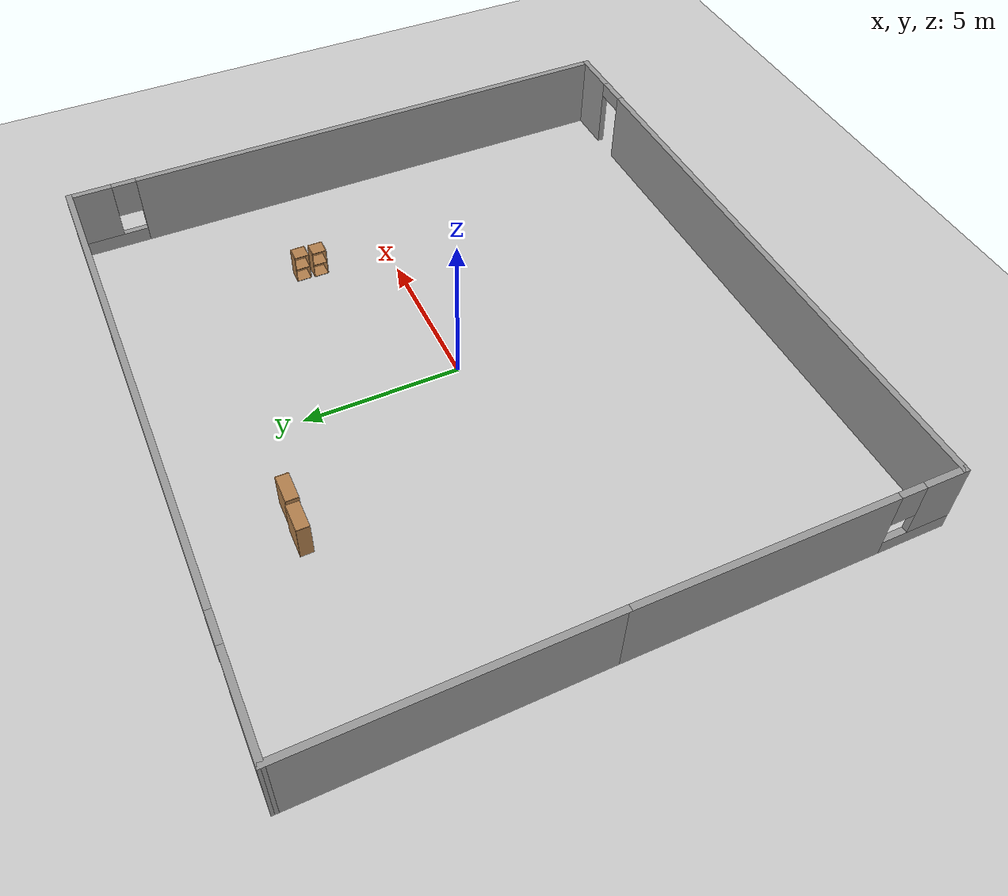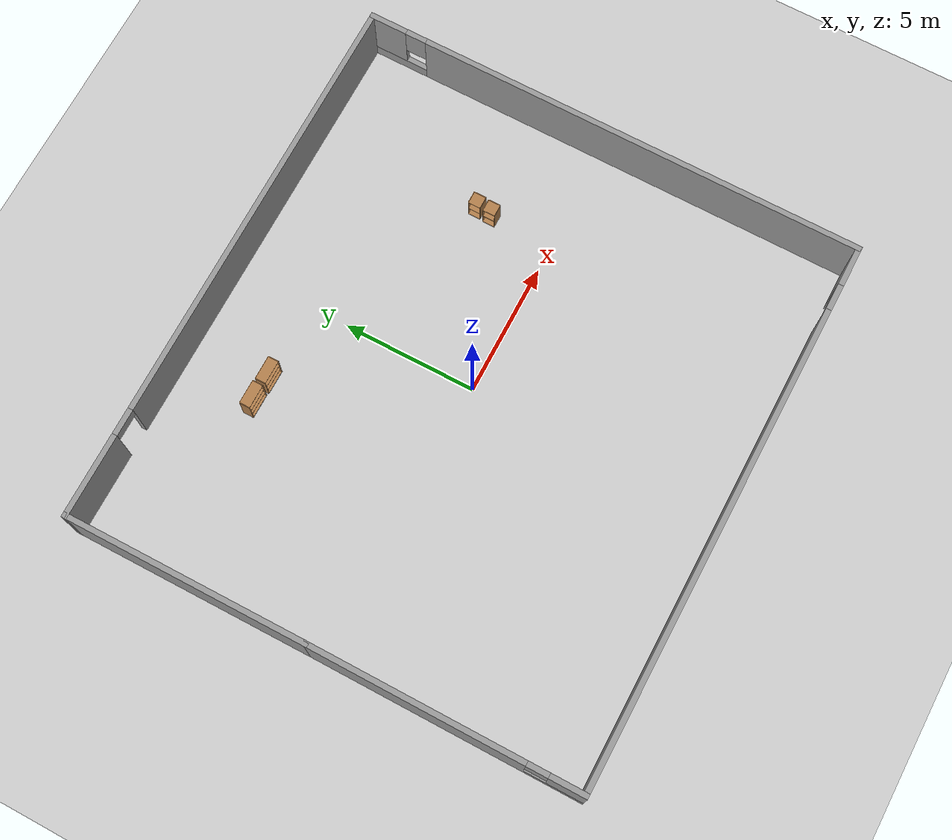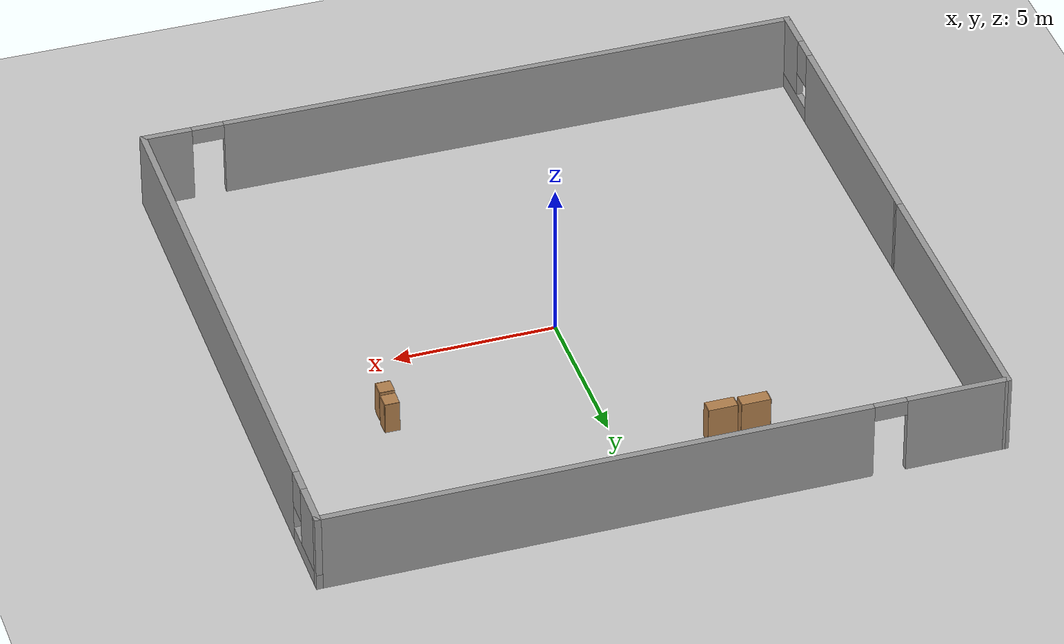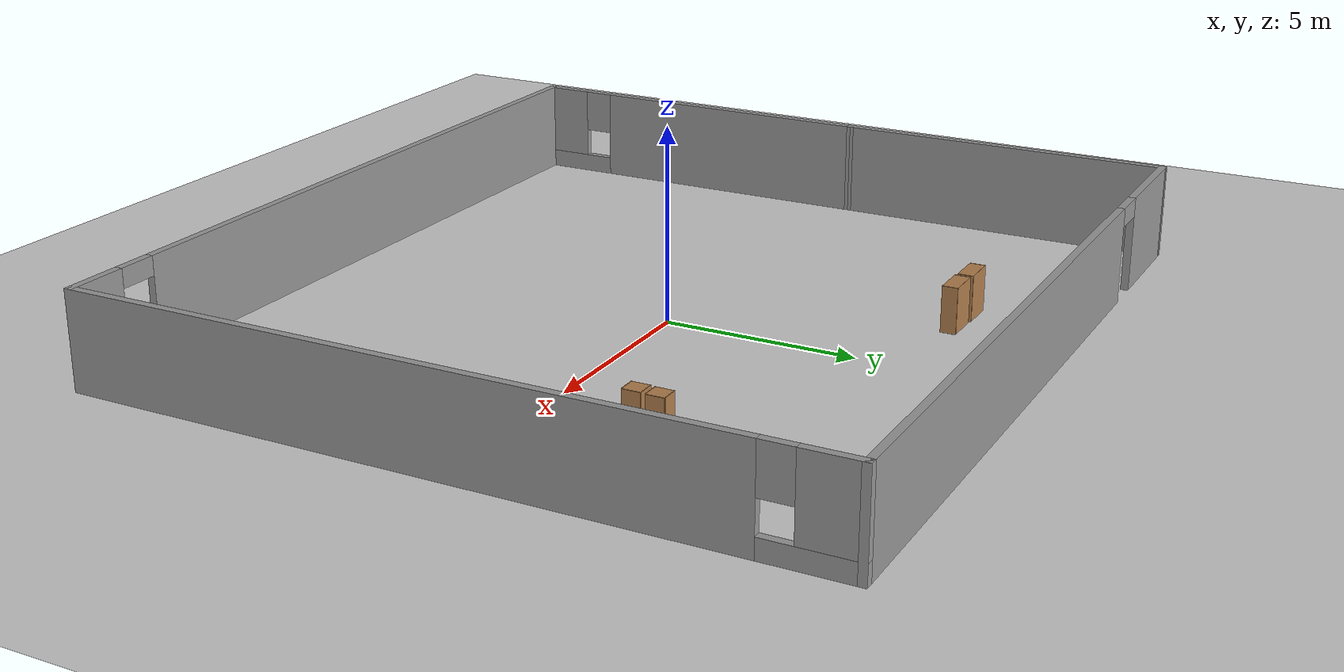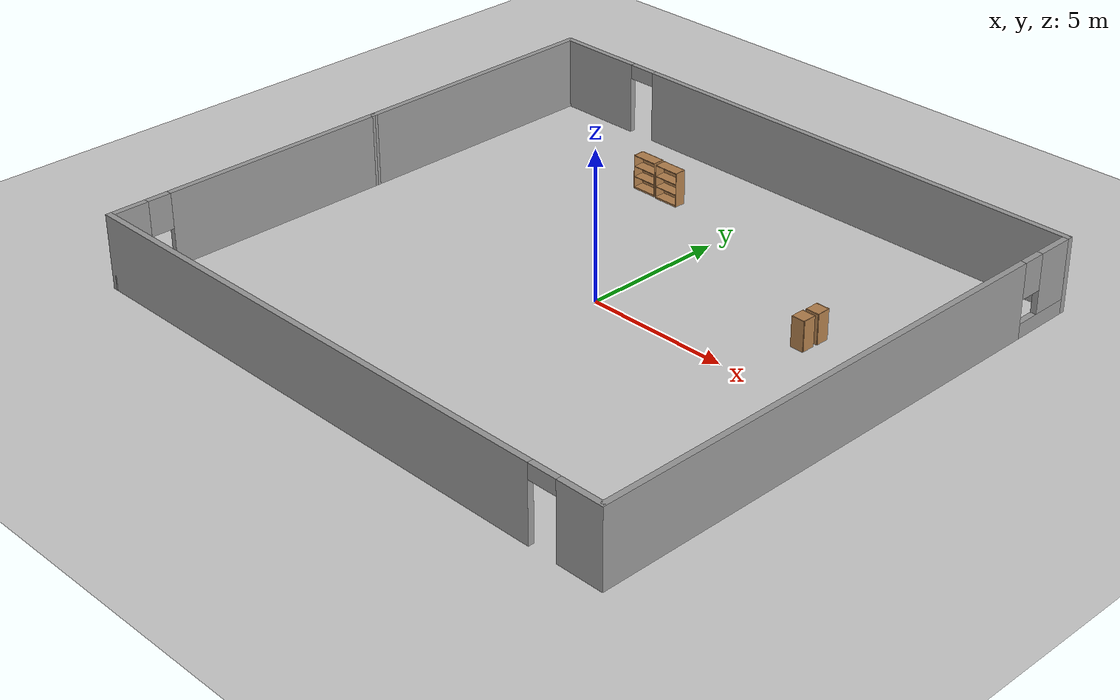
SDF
<sdf version="1.4">
 <world name="default">
  <light name="sun" type="directional">
   <pose>0 0 10 0 -0 0</pose>
   <diffuse>0.8 0.8 0.8 1</diffuse>
   <specular>0.2 0.2 0.2 1</specular>
   <attenuation>
    <range>1000</range>
    <constant>0.9</constant>
    <linear>0.01</linear>
    <quadratic>0.001</quadratic>
   </attenuation>
   <direction>-0.5 0.1 -0.9</direction>
  </light>
  <model name="ground_plane">
   <static>1</static>
   <link name="link">
    <collision name="collision">
     <geometry><plane><normal>0 0 1</normal><size>100 100</size></plane></geometry>
     <surface><friction><ode><mu>100</mu><mu2>50</mu2></ode></friction></surface>
    </collision>
    <visual name="visual">
     <cast_shadows>0</cast_shadows>
     <geometry><plane><normal>0 0 1</normal><size>100 100</size></plane></geometry>
     <material>
      <script><uri>file://media/materials/scripts/gazebo.material</uri><name>Gazebo/Grey</name></script>
     </material>
    </visual>
    <velocity_decay><linear>0</linear><angular>0</angular></velocity_decay>
   </link>
  </model>
  <physics type="ode">
   <max_step_size>0.001</max_step_size>
   <real_time_factor>1</real_time_factor>
   <real_time_update_rate>1000</real_time_update_rate>
   <gravity>0 0 -9.8</gravity>
  </physics>
  <scene><ambient>0.4 0.4 0.4 1</ambient><background>0.7 0.7 0.7 1</background><shadows>1</shadows></scene>
  <spherical_coordinates>
   <surface_model>EARTH_WGS84</surface_model>
   <latitude_deg>0</latitude_deg>
   <longitude_deg>0</longitude_deg>
   <elevation>0</elevation>
   <heading_deg>0</heading_deg>
  </spherical_coordinates>
  <model name="BuildingDefaultNameXX1">
   <link name="Wall_10">
    <collision name="Wall_10_Collision">
     <geometry><box><size>9.16626 0.2 2.5</size></box></geometry>
     <pose>0 0 1.25 0 -0 0</pose>
    </collision>
    <visual name="Wall_10_Visual">
     <pose>0 0 1.25 0 -0 0</pose>
     <geometry><box><size>9.16626 0.2 2.5</size></box></geometry>
     <material>
      <script><uri>file://media/materials/scripts/gazebo.material</uri><name>Gazebo/Grey</name></script>
     </material>
    </visual>
    <velocity_decay><linear>0</linear><angular>0</angular></velocity_decay>
    <pose>-10.6432 4.8497 0 0 0 -1.56526</pose>
   </link>
   <link name="Wall_6">
    <pose>-10.6184 -4.64118 0 0 0 -1.5708</pose>
    <visual name="Wall_6_Visual_0">
     <pose>-1.08743 0 1.25 0 -0 0</pose>
     <geometry><box><size>8.04077 0.2 2.5</size></box></geometry>
     <material>
      <script><uri>file://media/materials/scripts/gazebo.material</uri><name>Gazebo/Grey</name></script>
     </material>
    </visual>
    <collision name="Wall_6_Collision_0">
     <geometry><box><size>8.04077 0.2 2.5</size></box></geometry>
     <pose>-1.08743 0 1.25 0 -0 0</pose>
    </collision>
    <visual name="Wall_6_Visual_1">
     <pose>4.02039 0 0.25 0 -0 0</pose>
     <geometry><box><size>2.17486 0.2 0.5</size></box></geometry>
     <material>
      <script><uri>file://media/materials/scripts/gazebo.material</uri><name>Gazebo/Grey</name></script>
     </material>
    </visual>
    <collision name="Wall_6_Collision_1">
     <geometry><box><size>2.17486 0.2 0.5</size></box></geometry>
     <pose>4.02039 0 0.25 0 -0 0</pose>
    </collision>
    <visual name="Wall_6_Visual_2">
     <pose>4.42038 0 1.5 0 -0 0</pose>
     <geometry><box><size>1.37486 0.2 2</size></box></geometry>
     <material>
      <script><uri>file://media/materials/scripts/gazebo.material</uri><name>Gazebo/Grey</name></script>
     </material>
    </visual>
    <collision name="Wall_6_Collision_2">
     <geometry><box><size>1.37486 0.2 2</size></box></geometry>
     <pose>4.42038 0 1.5 0 -0 0</pose>
    </collision>
    <visual name="Wall_6_Visual_3">
     <pose>3.33296 0 1.9 0 -0 0</pose>
     <geometry><box><size>0.8 0.2 1.2</size></box></geometry>
     <material>
      <script><uri>file://media/materials/scripts/gazebo.material</uri><name>Gazebo/Grey</name></script>
     </material>
    </visual>
    <collision name="Wall_6_Collision_3">
     <geometry><box><size>0.8 0.2 1.2</size></box></geometry>
     <pose>3.33296 0 1.9 0 -0 0</pose>
    </collision>
    <velocity_decay><linear>0</linear><angular>0</angular></velocity_decay>
   </link>
   <link name="Wall_7">
    <pose>-0.314916 -9.649 0 0 -0 0</pose>
    <visual name="Wall_7_Visual_0">
     <pose>-1.30026 0 1.25 0 -0 0</pose>
     <geometry><box><size>18.2064 0.2 2.5</size></box></geometry>
     <material>
      <script><uri>file://media/materials/scripts/gazebo.material</uri><name>Gazebo/Grey</name></script>
     </material>
    </visual>
    <collision name="Wall_7_Collision_0">
     <geometry><box><size>18.2064 0.2 2.5</size></box></geometry>
     <pose>-1.30026 0 1.25 0 -0 0</pose>
    </collision>
    <visual name="Wall_7_Visual_1">
     <pose>9.60322 0 1.25 0 -0 0</pose>
     <geometry><box><size>1.60053 0.2 2.5</size></box></geometry>
     <material>
      <script><uri>file://media/materials/scripts/gazebo.material</uri><name>Gazebo/Grey</name></script>
     </material>
    </visual>
    <collision name="Wall_7_Collision_1">
     <geometry><box><size>1.60053 0.2 2.5</size></box></geometry>
     <pose>9.60322 0 1.25 0 -0 0</pose>
    </collision>
    <visual name="Wall_7_Visual_2">
     <pose>8.30296 0 2.25 0 -0 0</pose>
     <geometry><box><size>1 0.2 0.5</size></box></geometry>
     <material>
      <script><uri>file://media/materials/scripts/gazebo.material</uri><name>Gazebo/Grey</name></script>
     </material>
    </visual>
    <collision name="Wall_7_Collision_2">
     <geometry><box><size>1 0.2 0.5</size></box></geometry>
     <pose>8.30296 0 2.25 0 -0 0</pose>
    </collision>
    <velocity_decay><linear>0</linear><angular>0</angular></velocity_decay>
   </link>
   <link name="Wall_8">
    <pose>9.98857 -0.15812 0 0 -0 1.5708</pose>
    <visual name="Wall_8_Visual_0">
     <pose>-1.13395 0 1.25 0 -0 0</pose>
     <geometry><box><size>16.9138 0.2 2.5</size></box></geometry>
     <material>
      <script><uri>file://media/materials/scripts/gazebo.material</uri><name>Gazebo/Grey</name></script>
     </material>
    </visual>
    <collision name="Wall_8_Collision_0">
     <geometry><box><size>16.9138 0.2 2.5</size></box></geometry>
     <pose>-1.13395 0 1.25 0 -0 0</pose>
    </collision>
    <visual name="Wall_8_Visual_1">
     <pose>8.45692 0 0.25 0 -0 0</pose>
     <geometry><box><size>2.26791 0.2 0.5</size></box></geometry>
     <material>
      <script><uri>file://media/materials/scripts/gazebo.material</uri><name>Gazebo/Grey</name></script>
     </material>
    </visual>
    <collision name="Wall_8_Collision_1">
     <geometry><box><size>2.26791 0.2 0.5</size></box></geometry>
     <pose>8.45692 0 0.25 0 -0 0</pose>
    </collision>
    <visual name="Wall_8_Visual_2">
     <pose>8.85692 0 1.5 0 -0 0</pose>
     <geometry><box><size>1.46791 0.2 2</size></box></geometry>
     <material>
      <script><uri>file://media/materials/scripts/gazebo.material</uri><name>Gazebo/Grey</name></script>
     </material>
    </visual>
    <collision name="Wall_8_Collision_2">
     <geometry><box><size>1.46791 0.2 2</size></box></geometry>
     <pose>8.85692 0 1.5 0 -0 0</pose>
    </collision>
    <visual name="Wall_8_Visual_3">
     <pose>7.72297 0 1.9 0 -0 0</pose>
     <geometry><box><size>0.8 0.2 1.2</size></box></geometry>
     <material>
      <script><uri>file://media/materials/scripts/gazebo.material</uri><name>Gazebo/Grey</name></script>
     </material>
    </visual>
    <collision name="Wall_8_Collision_3">
     <geometry><box><size>0.8 0.2 1.2</size></box></geometry>
     <pose>7.72297 0 1.9 0 -0 0</pose>
    </collision>
    <velocity_decay><linear>0</linear><angular>0</angular></velocity_decay>
   </link>
   <link name="Wall_9">
    <pose>-0.339737 9.33276 0 0 -0 3.14159</pose>
    <visual name="Wall_9_Visual_0">
     <pose>-2.09117 0 1.25 0 -0 0</pose>
     <geometry><box><size>16.6743 0.2 2.5</size></box></geometry>
     <material>
      <script><uri>file://media/materials/scripts/gazebo.material</uri><name>Gazebo/Grey</name></script>
     </material>
    </visual>
    <collision name="Wall_9_Collision_0">
     <geometry><box><size>16.6743 0.2 2.5</size></box></geometry>
     <pose>-2.09117 0 1.25 0 -0 0</pose>
    </collision>
    <visual name="Wall_9_Visual_1">
     <pose>8.83714 0 1.25 0 -0 0</pose>
     <geometry><box><size>3.18234 0.2 2.5</size></box></geometry>
     <material>
      <script><uri>file://media/materials/scripts/gazebo.material</uri><name>Gazebo/Grey</name></script>
     </material>
    </visual>
    <collision name="Wall_9_Collision_1">
     <geometry><box><size>3.18234 0.2 2.5</size></box></geometry>
     <pose>8.83714 0 1.25 0 -0 0</pose>
    </collision>
    <visual name="Wall_9_Visual_2">
     <pose>6.74597 0 2.25 0 -0 0</pose>
     <geometry><box><size>1 0.2 0.5</size></box></geometry>
     <material>
      <script><uri>file://media/materials/scripts/gazebo.material</uri><name>Gazebo/Grey</name></script>
     </material>
    </visual>
    <collision name="Wall_9_Collision_2">
     <geometry><box><size>1 0.2 0.5</size></box></geometry>
     <pose>6.74597 0 2.25 0 -0 0</pose>
    </collision>
    <velocity_decay><linear>0</linear><angular>0</angular></velocity_decay>
   </link>
   <static>1</static>
  </model>
  <model name="bookshelf">
   <static>1</static>
   <link name="link">
    <inertial><mass>1</mass></inertial>
    <collision name="back">
     <pose>0 0.005 0.6 0 -0 0</pose>
     <geometry><box><size>0.9 0.01 1.2</size></box></geometry>
    </collision>
    <visual name="visual1">
     <pose>0 0.005 0.6 0 -0 0</pose>
     <geometry><box><size>0.9 0.01 1.2</size></box></geometry>
     <material>
      <script><uri>file://media/materials/scripts/gazebo.material</uri><name>Gazebo/Wood</name></script>
     </material>
    </visual>
    <collision name="left_side">
     <pose>0.45 -0.195 0.6 0 -0 0</pose>
     <geometry><box><size>0.02 0.4 1.2</size></box></geometry>
    </collision>
    <visual name="visual2">
     <pose>0.45 -0.195 0.6 0 -0 0</pose>
     <geometry><box><size>0.02 0.4 1.2</size></box></geometry>
     <material>
      <script><uri>file://media/materials/scripts/gazebo.material</uri><name>Gazebo/Wood</name></script>
     </material>
    </visual>
    <collision name="right_side">
     <pose>-0.45 -0.195 0.6 0 -0 0</pose>
     <geometry><box><size>0.02 0.4 1.2</size></box></geometry>
    </collision>
    <visual name="visual3">
     <pose>-0.45 -0.195 0.6 0 -0 0</pose>
     <geometry><box><size>0.02 0.4 1.2</size></box></geometry>
     <material>
      <script><uri>file://media/materials/scripts/gazebo.material</uri><name>Gazebo/Wood</name></script>
     </material>
    </visual>
    <collision name="bottom">
     <pose>0 -0.195 0.03 0 -0 0</pose>
     <geometry><box><size>0.88 0.4 0.06</size></box></geometry>
    </collision>
    <visual name="visual4">
     <pose>0 -0.195 0.03 0 -0 0</pose>
     <geometry><box><size>0.88 0.4 0.06</size></box></geometry>
     <material>
      <script><uri>file://media/materials/scripts/gazebo.material</uri><name>Gazebo/Wood</name></script>
     </material>
    </visual>
    <collision name="top">
     <pose>0 -0.195 1.19 0 -0 0</pose>
     <geometry><box><size>0.88 0.4 0.02</size></box></geometry>
    </collision>
    <visual name="visual5">
     <pose>0 -0.195 1.19 0 -0 0</pose>
     <geometry><box><size>0.88 0.4 0.02</size></box></geometry>
     <material>
      <script><uri>file://media/materials/scripts/gazebo.material</uri><name>Gazebo/Wood</name></script>
     </material>
    </visual>
    <collision name="low_shelf">
     <pose>0 -0.195 0.43 0 -0 0</pose>
     <geometry><box><size>0.88 0.4 0.02</size></box></geometry>
    </collision>
    <visual name="visual6">
     <pose>0 -0.195 0.43 0 -0 0</pose>
     <geometry><box><size>0.88 0.4 0.02</size></box></geometry>
     <material>
      <script><uri>file://media/materials/scripts/gazebo.material</uri><name>Gazebo/Wood</name></script>
     </material>
    </visual>
    <collision name="high_shelf">
     <pose>0 -0.195 0.8 0 -0 0</pose>
     <geometry><box><size>0.88 0.4 0.02</size></box></geometry>
    </collision>
    <visual name="visual7">
     <pose>0 -0.195 0.8 0 -0 0</pose>
     <geometry><box><size>0.88 0.4 0.02</size></box></geometry>
     <material>
      <script><uri>file://media/materials/scripts/gazebo.material</uri><name>Gazebo/Wood</name></script>
     </material>
    </visual>
    <velocity_decay><linear>0</linear><angular>0</angular></velocity_decay>
   </link>
   <pose>-4 6.59644 0 0 -0 0</pose>
  </model>
  <model name="bookshelf_0">
   <static>1</static>
   <link name="link">
    <inertial><mass>1</mass></inertial>
    <collision name="back">
     <pose>0 0.005 0.6 0 -0 0</pose>
     <geometry><box><size>0.9 0.01 1.2</size></box></geometry>
    </collision>
    <visual name="visual1">
     <pose>0 0.005 0.6 0 -0 0</pose>
     <geometry><box><size>0.9 0.01 1.2</size></box></geometry>
     <material>
      <script><uri>file://media/materials/scripts/gazebo.material</uri><name>Gazebo/Wood</name></script>
     </material>
    </visual>
    <collision name="left_side">
     <pose>0.45 -0.195 0.6 0 -0 0</pose>
     <geometry><box><size>0.02 0.4 1.2</size></box></geometry>
    </collision>
    <visual name="visual2">
     <pose>0.45 -0.195 0.6 0 -0 0</pose>
     <geometry><box><size>0.02 0.4 1.2</size></box></geometry>
     <material>
      <script><uri>file://media/materials/scripts/gazebo.material</uri><name>Gazebo/Wood</name></script>
     </material>
    </visual>
    <collision name="right_side">
     <pose>-0.45 -0.195 0.6 0 -0 0</pose>
     <geometry><box><size>0.02 0.4 1.2</size></box></geometry>
    </collision>
    <visual name="visual3">
     <pose>-0.45 -0.195 0.6 0 -0 0</pose>
     <geometry><box><size>0.02 0.4 1.2</size></box></geometry>
     <material>
      <script><uri>file://media/materials/scripts/gazebo.material</uri><name>Gazebo/Wood</name></script>
     </material>
    </visual>
    <collision name="bottom">
     <pose>0 -0.195 0.03 0 -0 0</pose>
     <geometry><box><size>0.88 0.4 0.06</size></box></geometry>
    </collision>
    <visual name="visual4">
     <pose>0 -0.195 0.03 0 -0 0</pose>
     <geometry><box><size>0.88 0.4 0.06</size></box></geometry>
     <material>
      <script><uri>file://media/materials/scripts/gazebo.material</uri><name>Gazebo/Wood</name></script>
     </material>
    </visual>
    <collision name="top">
     <pose>0 -0.195 1.19 0 -0 0</pose>
     <geometry><box><size>0.88 0.4 0.02</size></box></geometry>
    </collision>
    <visual name="visual5">
     <pose>0 -0.195 1.19 0 -0 0</pose>
     <geometry><box><size>0.88 0.4 0.02</size></box></geometry>
     <material>
      <script><uri>file://media/materials/scripts/gazebo.material</uri><name>Gazebo/Wood</name></script>
     </material>
    </visual>
    <collision name="low_shelf">
     <pose>0 -0.195 0.43 0 -0 0</pose>
     <geometry><box><size>0.88 0.4 0.02</size></box></geometry>
    </collision>
    <visual name="visual6">
     <pose>0 -0.195 0.43 0 -0 0</pose>
     <geometry><box><size>0.88 0.4 0.02</size></box></geometry>
     <material>
      <script><uri>file://media/materials/scripts/gazebo.material</uri><name>Gazebo/Wood</name></script>
     </material>
    </visual>
    <collision name="high_shelf">
     <pose>0 -0.195 0.8 0 -0 0</pose>
     <geometry><box><size>0.88 0.4 0.02</size></box></geometry>
    </collision>
    <visual name="visual7">
     <pose>0 -0.195 0.8 0 -0 0</pose>
     <geometry><box><size>0.88 0.4 0.02</size></box></geometry>
     <material>
      <script><uri>file://media/materials/scripts/gazebo.material</uri><name>Gazebo/Wood</name></script>
     </material>
    </visual>
    <velocity_decay><linear>0</linear><angular>0</angular></velocity_decay>
   </link>
   <pose>-3 6.55849 0 0 -0 0</pose>
  </model>
  <model name="cabinet">
   <static>1</static>
   <link name="cabinet_bottom_plate">
    <inertial>
     <pose>0 0 -1 0 -0 0</pose>
     <inertia><ixx>2.05</ixx><ixy>0</ixy><ixz>0</ixz><iyy>2.05</iyy><iyz>0</iyz><izz>2.05</izz></inertia>
     <mass>25</mass>
    </inertial>
    <collision name="cabinet_bottom_plate_geom">
     <pose>0 0 0.01 0 -0 0</pose>
     <geometry><box><size>0.45 0.45 0.02</size></box></geometry>
    </collision>
    <visual name="cabinet_bottom_plate_geom_visual">
     <pose>0 0 0.01 0 -0 0</pose>
     <geometry><box><size>0.45 0.45 0.02</size></box></geometry>
     <material>
      <script><uri>file://media/materials/scripts/gazebo.material</uri><name>Gazebo/Wood</name></script>
     </material>
    </visual>
    <collision name="cabinet_bottom_plate_geom_cabinet_back_plate">
     <pose>0.235 0 0.51 0 -0 0</pose>
     <geometry><box><size>0.02 0.45 1.02</size></box></geometry>
    </collision>
    <visual name="cabinet_bottom_plate_geom_cabinet_back_plate_visual">
     <pose>0.235 0 0.51 0 -0 0</pose>
     <geometry><box><size>0.02 0.45 1.02</size></box></geometry>
     <material>
      <script><uri>file://media/materials/scripts/gazebo.material</uri><name>Gazebo/Wood</name></script>
     </material>
    </visual>
    <collision name="cabinet_bottom_plate_geom_cabinet_left_plate">
     <pose>0 0.235 0.51 0 -0 0</pose>
     <geometry><box><size>0.45 0.02 1.02</size></box></geometry>
    </collision>
    <visual name="cabinet_bottom_plate_geom_cabinet_left_plate_visual">
     <pose>0 0.235 0.51 0 -0 0</pose>
     <geometry><box><size>0.45 0.02 1.02</size></box></geometry>
     <material>
      <script><uri>file://media/materials/scripts/gazebo.material</uri><name>Gazebo/Wood</name></script>
     </material>
    </visual>
    <collision name="cabinet_bottom_plate_geom_cabinet_middle_plate">
     <pose>0 0 0.51 0 -0 0</pose>
     <geometry><box><size>0.45 0.45 0.02</size></box></geometry>
    </collision>
    <visual name="cabinet_bottom_plate_geom_cabinet_middle_plate_visual">
     <pose>0 0 0.51 0 -0 0</pose>
     <geometry><box><size>0.45 0.45 0.02</size></box></geometry>
     <material>
      <script><uri>file://media/materials/scripts/gazebo.material</uri><name>Gazebo/Wood</name></script>
     </material>
    </visual>
    <collision name="cabinet_bottom_plate_geom_cabinet_right_plate">
     <pose>0 -0.235 0.51 0 -0 0</pose>
     <geometry><box><size>0.45 0.02 1.02</size></box></geometry>
    </collision>
    <visual name="cabinet_bottom_plate_geom_cabinet_right_plate_visual">
     <pose>0 -0.235 0.51 0 -0 0</pose>
     <geometry><box><size>0.45 0.02 1.02</size></box></geometry>
     <material>
      <script><uri>file://media/materials/scripts/gazebo.material</uri><name>Gazebo/Wood</name></script>
     </material>
    </visual>
    <collision name="cabinet_bottom_plate_geom_cabinet_top_plate">
     <pose>0 0 1.01 0 -0 0</pose>
     <geometry><box><size>0.45 0.45 0.02</size></box></geometry>
    </collision>
    <visual name="cabinet_bottom_plate_geom_cabinet_top_plate_visual">
     <pose>0 0 1.01 0 -0 0</pose>
     <geometry><box><size>0.45 0.45 0.02</size></box></geometry>
     <material>
      <script><uri>file://media/materials/scripts/gazebo.material</uri><name>Gazebo/Wood</name></script>
     </material>
    </visual>
    <velocity_decay><linear>0</linear><angular>0</angular></velocity_decay>
   </link>
   <pose>6 3 0 0 -0 0</pose>
  </model>
  <model name="cabinet_0">
   <static>1</static>
   <link name="cabinet_bottom_plate">
    <inertial>
     <pose>0 0 -1 0 -0 0</pose>
     <inertia><ixx>2.05</ixx><ixy>0</ixy><ixz>0</ixz><iyy>2.05</iyy><iyz>0</iyz><izz>2.05</izz></inertia>
     <mass>25</mass>
    </inertial>
    <collision name="cabinet_bottom_plate_geom">
     <pose>0 0 0.01 0 -0 0</pose>
     <geometry><box><size>0.45 0.45 0.02</size></box></geometry>
    </collision>
    <visual name="cabinet_bottom_plate_geom_visual">
     <pose>0 0 0.01 0 -0 0</pose>
     <geometry><box><size>0.45 0.45 0.02</size></box></geometry>
     <material>
      <script><uri>file://media/materials/scripts/gazebo.material</uri><name>Gazebo/Wood</name></script>
     </material>
    </visual>
    <collision name="cabinet_bottom_plate_geom_cabinet_back_plate">
     <pose>0.235 0 0.51 0 -0 0</pose>
     <geometry><box><size>0.02 0.45 1.02</size></box></geometry>
    </collision>
    <visual name="cabinet_bottom_plate_geom_cabinet_back_plate_visual">
     <pose>0.235 0 0.51 0 -0 0</pose>
     <geometry><box><size>0.02 0.45 1.02</size></box></geometry>
     <material>
      <script><uri>file://media/materials/scripts/gazebo.material</uri><name>Gazebo/Wood</name></script>
     </material>
    </visual>
    <collision name="cabinet_bottom_plate_geom_cabinet_left_plate">
     <pose>0 0.235 0.51 0 -0 0</pose>
     <geometry><box><size>0.45 0.02 1.02</size></box></geometry>
    </collision>
    <visual name="cabinet_bottom_plate_geom_cabinet_left_plate_visual">
     <pose>0 0.235 0.51 0 -0 0</pose>
     <geometry><box><size>0.45 0.02 1.02</size></box></geometry>
     <material>
      <script><uri>file://media/materials/scripts/gazebo.material</uri><name>Gazebo/Wood</name></script>
     </material>
    </visual>
    <collision name="cabinet_bottom_plate_geom_cabinet_middle_plate">
     <pose>0 0 0.51 0 -0 0</pose>
     <geometry><box><size>0.45 0.45 0.02</size></box></geometry>
    </collision>
    <visual name="cabinet_bottom_plate_geom_cabinet_middle_plate_visual">
     <pose>0 0 0.51 0 -0 0</pose>
     <geometry><box><size>0.45 0.45 0.02</size></box></geometry>
     <material>
      <script><uri>file://media/materials/scripts/gazebo.material</uri><name>Gazebo/Wood</name></script>
     </material>
    </visual>
    <collision name="cabinet_bottom_plate_geom_cabinet_right_plate">
     <pose>0 -0.235 0.51 0 -0 0</pose>
     <geometry><box><size>0.45 0.02 1.02</size></box></geometry>
    </collision>
    <visual name="cabinet_bottom_plate_geom_cabinet_right_plate_visual">
     <pose>0 -0.235 0.51 0 -0 0</pose>
     <geometry><box><size>0.45 0.02 1.02</size></box></geometry>
     <material>
      <script><uri>file://media/materials/scripts/gazebo.material</uri><name>Gazebo/Wood</name></script>
     </material>
    </visual>
    <collision name="cabinet_bottom_plate_geom_cabinet_top_plate">
     <pose>0 0 1.01 0 -0 0</pose>
     <geometry><box><size>0.45 0.45 0.02</size></box></geometry>
    </collision>
    <visual name="cabinet_bottom_plate_geom_cabinet_top_plate_visual">
     <pose>0 0 1.01 0 -0 0</pose>
     <geometry><box><size>0.45 0.45 0.02</size></box></geometry>
     <material>
      <script><uri>file://media/materials/scripts/gazebo.material</uri><name>Gazebo/Wood</name></script>
     </material>
    </visual>
    <velocity_decay><linear>0</linear><angular>0</angular></velocity_decay>
   </link>
   <pose>5.97524 2.40914 0 0 -0 0</pose>
  </model>
 </world>
</sdf>
